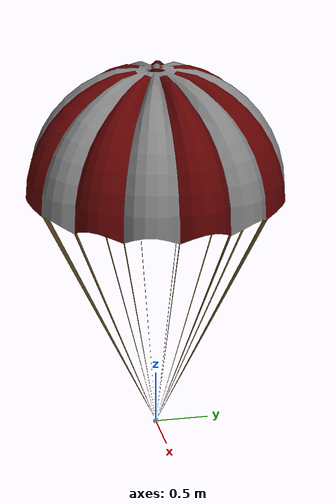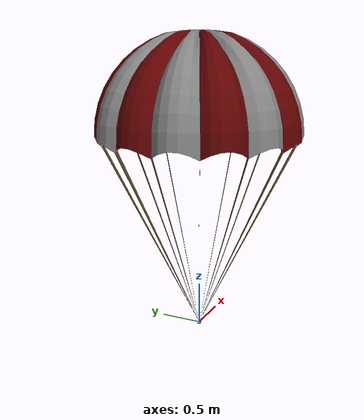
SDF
<?xml version="1.0" ?>
<sdf version="1.9">
  <model name="parachute_small">
    <pose>0 0 0 0 0 0</pose>
    <link name="chute">
      <pose>0 0 0 0 0 0</pose>
      <inertial>
        <pose>0 0 2.3 0 0 0</pose>
        <mass>0.1</mass>
        <inertia>
          <ixx>0.06250</ixx>
          <ixy>0.00</ixy>
          <ixz>0.00</ixz>
          <iyy>0.06250</iyy>
          <iyz>0.00</iyz>
          <izz>0.06250</izz>
        </inertia>
      </inertial>
      <collision name="collision">
        <pose>0 0 2.3  0 0 0</pose>
        <geometry>
          <sphere>
            <radius>1.25</radius>
          </sphere>
        </geometry>
      </collision>
      <visual name="visual">
        <pose>0 0 0 0 0 0</pose>
        <geometry>
          <mesh>
            <scale>2 2 2</scale>
            <uri>meshes/parachute_small.dae</uri>
          </mesh>
        </geometry>
      </visual>
      <!-- viual at bridle (located at the link origin) -->
      <visual name="bridle_visual">
        <geometry>
          <sphere>
            <radius>0.025</radius>
          </sphere>
        </geometry>
        <material>
          <ambient>0.0 0.3 0.7</ambient>
          <diffuse>0.0 0.3 0.7</diffuse>
          <specular>0.1 0.1 0.1 1</specular>
        </material>
      </visual>
    </link>
    <plugin name="gz::sim::systems::LiftDrag"
        filename="gz-sim-lift-drag-system">
      <a0>0</a0>
      <cla>0</cla>
      <cda>1.75</cda>  <!-- Such that Cd = 1.75 at alpha = 90deg (= upright parachute) -->
      <alpha_stall>1.5708</alpha_stall> <!-- = upright parachute -->
      <cla_stall>0</cla_stall>
      <cda_stall>0.01</cda_stall>
      <cp>0 0 1.25</cp>   <!-- About the vertical center of the chute -->
      <area>3</area>   <!-- Area of a circle of diameter 1m = 0.79, 3m2 is for a better visualization -->
      <air_density>1.204</air_density>
      <forward>0 0 0</forward>
      <upward>0 0 1</upward>
      <link_name>chute</link_name>
    </plugin>
  </model>
</sdf>
